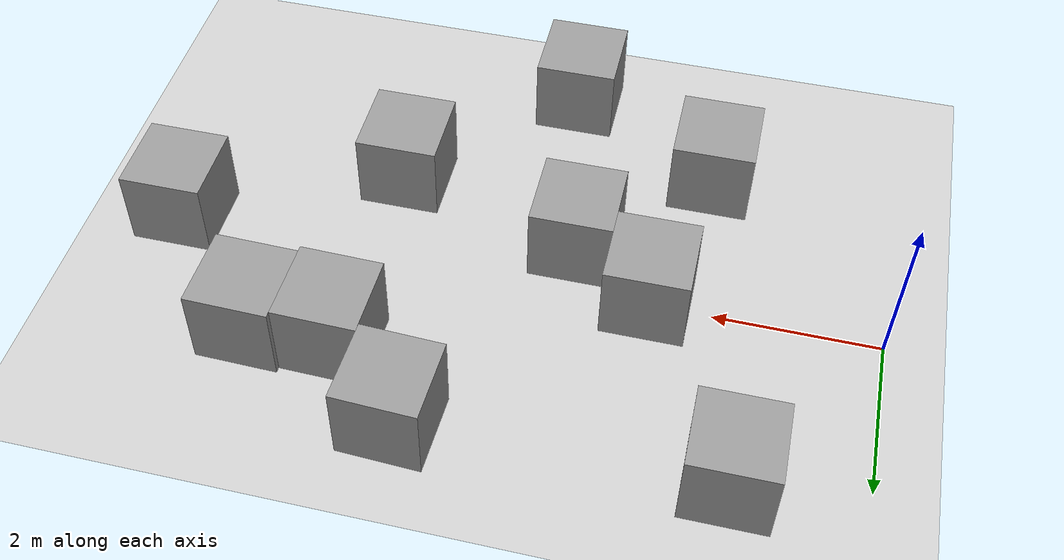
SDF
<sdf version="1.6">
 <world name="default">
  <light name="sun" type="directional">
   <pose>0 0 10 0 -0 0</pose>
   <diffuse>0.8 0.8 0.8 1</diffuse>
   <specular>0.2 0.2 0.2 1</specular>
   <attenuation>
    <range>1000</range>
    <constant>0.9</constant>
    <linear>0.01</linear>
    <quadratic>0.001</quadratic>
   </attenuation>
   <direction>-0.5 0.1 -0.9</direction>
  </light>
  <model name="ground_plane">
   <static>1</static>
   <link name="link">
    <collision name="collision">
     <geometry><plane><normal>0 0 1</normal><size>100 100</size></plane></geometry>
     <surface><friction><ode><mu>100</mu><mu2>50</mu2></ode></friction></surface>
    </collision>
    <visual name="visual">
     <cast_shadows>0</cast_shadows>
     <geometry><plane><normal>0 0 1</normal><size>100 100</size></plane></geometry>
     <material>
      <script><uri>file://media/materials/scripts/gazebo.material</uri><name>Gazebo/Grey</name></script>
     </material>
    </visual>
   </link>
  </model>
  <gravity>0 0 -9.8</gravity>
  <magnetic_field>6e-06 2.3e-05 -4.2e-05</magnetic_field>
  <atmosphere type="adiabatic"/>
  <physics name="default_physics" default="0" type="ode">
   <max_step_size>0.001</max_step_size>
   <real_time_factor>1</real_time_factor>
   <real_time_update_rate>1000</real_time_update_rate>
  </physics>
  <scene><ambient>0.4 0.4 0.4 1</ambient><background>0.7 0.7 0.7 1</background><shadows>1</shadows></scene>
  <audio><device>default</device></audio>
  <spherical_coordinates>
   <surface_model>EARTH_WGS84</surface_model>
   <latitude_deg>0</latitude_deg>
   <longitude_deg>0</longitude_deg>
   <elevation>0</elevation>
   <heading_deg>0</heading_deg>
  </spherical_coordinates>
  <model name="unit_box">
   <pose>2.76566 0.009579 0.499995 -1e-05 -0 -3.4e-05</pose>
   <link name="link">
    <inertial>
     <mass>1</mass>
     <inertia>
      <ixx>0.166667</ixx>
      <ixy>0</ixy>
      <ixz>0</ixz>
      <iyy>0.166667</iyy>
      <iyz>0</iyz>
      <izz>0.166667</izz>
     </inertia>
    </inertial>
    <collision name="collision"><geometry><box><size>1 1 1</size></box></geometry></collision>
    <visual name="visual">
     <geometry><box><size>1 1 1</size></box></geometry>
     <material>
      <script><name>Gazebo/Grey</name><uri>file://media/materials/scripts/gazebo.material</uri></script>
     </material>
    </visual>
   </link>
  </model>
  <model name="unit_box_0">
   <pose>2.30454 -2.16259 0.499995 0 1e-05 0</pose>
   <link name="link">
    <inertial>
     <mass>1</mass>
     <inertia>
      <ixx>0.166667</ixx>
      <ixy>0</ixy>
      <ixz>0</ixz>
      <iyy>0.166667</iyy>
      <iyz>0</iyz>
      <izz>0.166667</izz>
     </inertia>
    </inertial>
    <collision name="collision"><geometry><box><size>1 1 1</size></box></geometry></collision>
    <visual name="visual">
     <geometry><box><size>1 1 1</size></box></geometry>
     <material>
      <script><name>Gazebo/Grey</name><uri>file://media/materials/scripts/gazebo.material</uri></script>
     </material>
    </visual>
   </link>
  </model>
  <model name="unit_box_1">
   <pose>3.76564 -0.659962 0.499995 1e-05 0 -3.2e-05</pose>
   <link name="link">
    <inertial>
     <mass>1</mass>
     <inertia>
      <ixx>0.166667</ixx>
      <ixy>0</ixy>
      <ixz>0</ixz>
      <iyy>0.166667</iyy>
      <iyz>0</iyz>
      <izz>0.166667</izz>
     </inertia>
    </inertial>
    <collision name="collision"><geometry><box><size>1 1 1</size></box></geometry></collision>
    <visual name="visual">
     <geometry><box><size>1 1 1</size></box></geometry>
     <material>
      <script><name>Gazebo/Grey</name><uri>file://media/materials/scripts/gazebo.material</uri></script>
     </material>
    </visual>
   </link>
  </model>
  <model name="unit_box_2">
   <pose>4.23111 -3.24822 0.499995 0 1e-05 0</pose>
   <link name="link">
    <inertial>
     <mass>1</mass>
     <inertia>
      <ixx>0.166667</ixx>
      <ixy>0</ixy>
      <ixz>0</ixz>
      <iyy>0.166667</iyy>
      <iyz>0</iyz>
      <izz>0.166667</izz>
     </inertia>
    </inertial>
    <collision name="collision"><geometry><box><size>1 1 1</size></box></geometry></collision>
    <visual name="visual">
     <geometry><box><size>1 1 1</size></box></geometry>
     <material>
      <script><name>Gazebo/Grey</name><uri>file://media/materials/scripts/gazebo.material</uri></script>
     </material>
    </visual>
   </link>
  </model>
  <model name="unit_box_3">
   <pose>6.08692 -1.36461 0.499995 -1e-05 -0 -0</pose>
   <link name="link">
    <inertial>
     <mass>1</mass>
     <inertia>
      <ixx>0.166667</ixx>
      <ixy>0</ixy>
      <ixz>0</ixz>
      <iyy>0.166667</iyy>
      <iyz>0</iyz>
      <izz>0.166667</izz>
     </inertia>
    </inertial>
    <collision name="collision"><geometry><box><size>1 1 1</size></box></geometry></collision>
    <visual name="visual">
     <geometry><box><size>1 1 1</size></box></geometry>
     <material>
      <script><name>Gazebo/Grey</name><uri>file://media/materials/scripts/gazebo.material</uri></script>
     </material>
    </visual>
   </link>
  </model>
  <model name="unit_box_4">
   <pose>8.63421 -0.102877 0.499995 0 1e-05 0</pose>
   <link name="link">
    <inertial>
     <mass>1</mass>
     <inertia>
      <ixx>0.166667</ixx>
      <ixy>0</ixy>
      <ixz>0</ixz>
      <iyy>0.166667</iyy>
      <iyz>0</iyz>
      <izz>0.166667</izz>
     </inertia>
    </inertial>
    <collision name="collision"><geometry><box><size>1 1 1</size></box></geometry></collision>
    <visual name="visual">
     <geometry><box><size>1 1 1</size></box></geometry>
     <material>
      <script><name>Gazebo/Grey</name><uri>file://media/materials/scripts/gazebo.material</uri></script>
     </material>
    </visual>
   </link>
  </model>
  <model name="unit_box_5">
   <pose>7.19672 1.46106 0.499995 -1e-05 0 -0.021748</pose>
   <link name="link">
    <inertial>
     <mass>1</mass>
     <inertia>
      <ixx>0.166667</ixx>
      <ixy>0</ixy>
      <ixz>0</ixz>
      <iyy>0.166667</iyy>
      <iyz>0</iyz>
      <izz>0.166667</izz>
     </inertia>
    </inertial>
    <collision name="collision"><geometry><box><size>1 1 1</size></box></geometry></collision>
    <visual name="visual">
     <geometry><box><size>1 1 1</size></box></geometry>
     <material>
      <script><name>Gazebo/Grey</name><uri>file://media/materials/scripts/gazebo.material</uri></script>
     </material>
    </visual>
   </link>
  </model>
  <model name="unit_box_6">
   <pose>6.19545 1.4153 0.499995 -1e-05 0 -0.021748</pose>
   <link name="link">
    <inertial>
     <mass>1</mass>
     <inertia>
      <ixx>0.166667</ixx>
      <ixy>0</ixy>
      <ixz>0</ixz>
      <iyy>0.166667</iyy>
      <iyz>0</iyz>
      <izz>0.166667</izz>
     </inertia>
    </inertial>
    <collision name="collision"><geometry><box><size>1 1 1</size></box></geometry></collision>
    <visual name="visual">
     <geometry><box><size>1 1 1</size></box></geometry>
     <material>
      <script><name>Gazebo/Grey</name><uri>file://media/materials/scripts/gazebo.material</uri></script>
     </material>
    </visual>
   </link>
  </model>
  <model name="unit_box_7">
   <pose>5.2237 2.34534 0.499995 0 -1e-05 -0.042331</pose>
   <link name="link">
    <inertial>
     <mass>1</mass>
     <inertia>
      <ixx>0.166667</ixx>
      <ixy>0</ixy>
      <ixz>0</ixz>
      <iyy>0.166667</iyy>
      <iyz>0</iyz>
      <izz>0.166667</izz>
     </inertia>
    </inertial>
    <collision name="collision"><geometry><box><size>1 1 1</size></box></geometry></collision>
    <visual name="visual">
     <geometry><box><size>1 1 1</size></box></geometry>
     <material>
      <script><name>Gazebo/Grey</name><uri>file://media/materials/scripts/gazebo.material</uri></script>
     </material>
    </visual>
   </link>
  </model>
  <model name="unit_box_8">
   <pose>1.50833 2.26869 0.5 0 -0 0</pose>
   <link name="link">
    <inertial>
     <mass>1</mass>
     <inertia>
      <ixx>0.166667</ixx>
      <ixy>0</ixy>
      <ixz>0</ixz>
      <iyy>0.166667</iyy>
      <iyz>0</iyz>
      <izz>0.166667</izz>
     </inertia>
    </inertial>
    <collision name="collision"><geometry><box><size>1 1 1</size></box></geometry></collision>
    <visual name="visual">
     <geometry><box><size>1 1 1</size></box></geometry>
     <material>
      <script><name>Gazebo/Grey</name><uri>file://media/materials/scripts/gazebo.material</uri></script>
     </material>
    </visual>
   </link>
  </model>
 </world>
</sdf>
